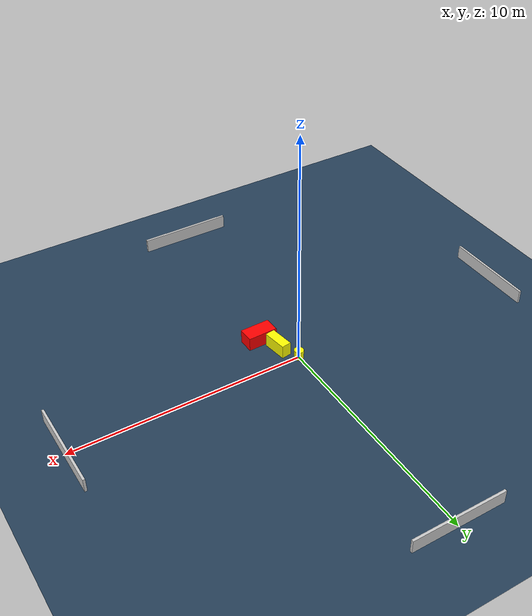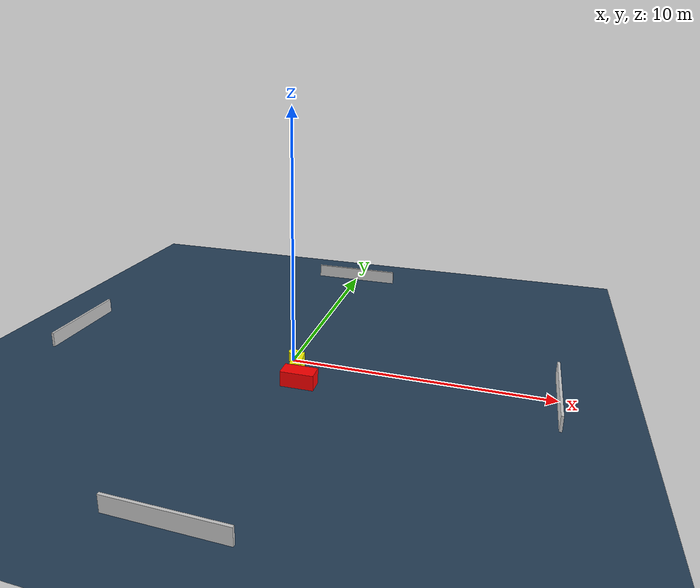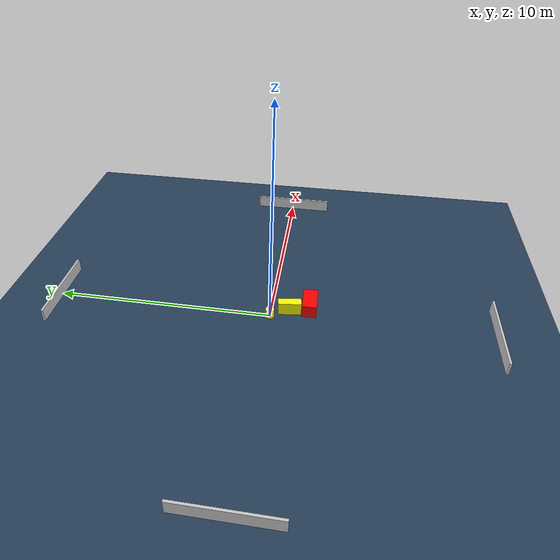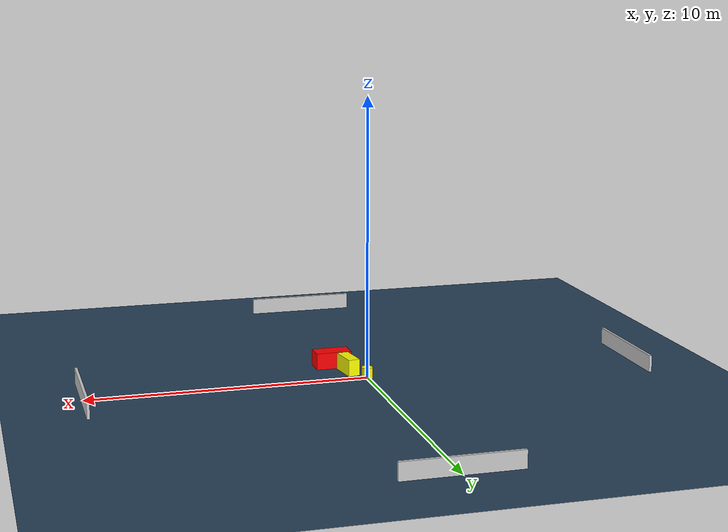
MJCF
<?xml version="1.0" ?>
<mujoco model="generated_environment">
  <option timestep="0.01" integrator="RK4" cone="elliptic"/>
  <default>
    <geom density="1"/>
  </default>
  <asset>
    <texture builtin="gradient" height="3072" name="skybox" rgb1="0.3 0.5 0.7" rgb2="0 0 0" type="skybox" width="512"/>
    <texture builtin="checker" height="300" name="groundplane" rgb1="0.2 0.3 0.4" rgb2="0.1 0.2 0.3" type="2d" width="300"/>
    <material name="groundplane" reflectance="0.2" texrepeat="5 5" texture="groundplane"/>
  </asset>
  <worldbody>
    <light dir="0 0 -1" directional="true" pos="0 0 1.5"/>
    <geom condim="3" friction="0.5 0.005 0.001" material="groundplane" name="floor" pos="0 0 0" size="0 0 0.05" type="plane"/>
    <body name="walls">
      <geom name="wall_1" condim="4" pos="-10.0 0.0 0.3" rgba="0.800000011920929 0.800000011920929 0.800000011920929 1.0" size="0.05 2.0 0.3" type="box"/>
      <geom name="wall_2" condim="4" pos="10.0 0.0 0.3" rgba="0.800000011920929 0.800000011920929 0.800000011920929 1.0" size="0.05 2.0 0.3" type="box"/>
      <geom name="wall_3" condim="4" pos="0.0 -10.0 0.3" rgba="0.800000011920929 0.800000011920929 0.800000011920929 1.0" size="2.0 0.05 0.3" type="box"/>
      <geom name="wall_4" condim="4" pos="0.0 10.0 0.3" rgba="0.800000011920929 0.800000011920929 0.800000011920929 1.0" size="2.0 0.05 0.3" type="box"/>
    </body>
    <body name="robot">
      <joint name="joint_x" type="slide" pos="0 0 0" axis="1 0 0"/>
      <joint name="joint_y" type="slide" pos="0 0 0" axis="0 1 0"/>
      <geom name="robot" type="cylinder" pos="0.0 0.0 0.2" size="0.2 0.2 0.0" mass="5.0" friction="1.0 0.005 0.0001" condim="4" rgba="1.0 1.0 0.0 1.0"/>
    </body>
    <body name="obstacle_1_movable">
      <geom name="obstacle_1_movable" condim="4" pos="0.4583407404039152 -0.8534400323974198 0.3" euler="0 0 278.6284257249242" friction="0.0 0.005 0.001" rgba="1.0 1.0 0.0 1.0" size="0.5268477672401937 0.2093551594718346 0.3" type="box" mass="0.1"/>
      <joint type="free"/>
    </body>
    <body name="obstacle_2_static">
      <geom name="obstacle_2_static" condim="4" pos="0.8397125402742204 -1.7499776063758734 0.3" euler="0 0 181.208365457158" friction="0.0 0.005 0.001" rgba="1.0 0.0 0.0 1.0" size="0.6419243338985807 0.3338162822829701 0.3" type="box"/>
    </body>
  </worldbody>
  <actuator>
    <motor name="actuator_x" joint="joint_x" gear="1" ctrlrange="-1 1"/>
    <motor name="actuator_y" joint="joint_y" gear="1" ctrlrange="-1 1"/>
  </actuator>
</mujoco>
